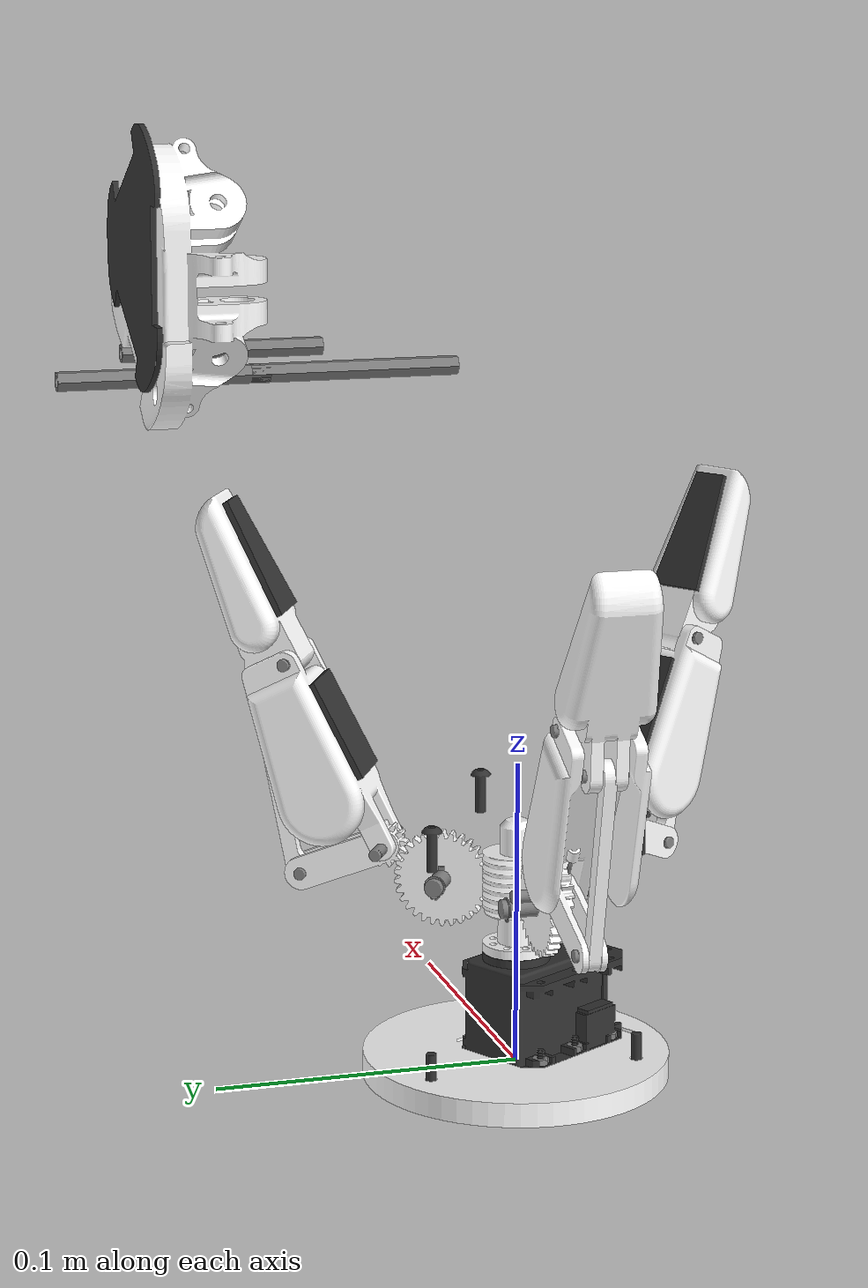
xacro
<?xml version="1.0"?>
<robot name="alaris_gripper" xmlns:xacro="http://www.ros.org/wiki/xacro">

    <!-- Materials and Properties -->
    <xacro:include filename="$(find alaris_gripper_description)/urdf/extras/materials.urdf.xacro"/>
    <xacro:include filename="$(find alaris_gripper_description)/urdf/extras/properties.urdf.xacro"/>

    <!-- Gripper Parts -->
    <xacro:include filename="$(find alaris_gripper_description)/urdf/parts/base.urdf.xacro"/>
    <xacro:include filename="$(find alaris_gripper_description)/urdf/parts/finger.urdf.xacro"/>

    <xacro:alaris_gripper_base prefix="${prefix}"/>

    <xacro:alaris_gripper_finger prefix="${prefix}" finger_id="1" parent="${prefix}_palm_link">
        <origin xyz="-0.0435 -0.00052 -0.006" rpy="0 0 ${PI}"/>
    </xacro:alaris_gripper_finger>

    <xacro:alaris_gripper_finger prefix="${prefix}" finger_id="2" parent="${prefix}_palm_link">
        <origin xyz="0.022 0.03785 -0.006" rpy="0 0 ${PI/3}"/>
    </xacro:alaris_gripper_finger>

    <xacro:alaris_gripper_finger prefix="${prefix}" finger_id="3" parent="${prefix}_palm_link">
        <origin xyz="0.0226 -0.03785 -0.006" rpy="0 0 -${PI/3}"/>
    </xacro:alaris_gripper_finger>

</robot>

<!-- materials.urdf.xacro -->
<robot name="gripper_materials" xmlns:xacro="http://www.ros.org/wiki/xacro">

    <material name="black">
        <color rgba="0.2 0.2 0.2 1"/>
    </material>

    <material name="white">
        <color rgba="1 1 1 1"/>
    </material>

    <material name="gray">
        <color rgba="0.5 0.5 0.5 1"/>
    </material>

</robot>

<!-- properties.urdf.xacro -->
<robot name="gripper_materials" xmlns:xacro="http://www.ros.org/wiki/xacro">

    <xacro:property name="PI" value="3.14159"/>
    <xacro:property name="prefix" value="gripper"/>

</robot>

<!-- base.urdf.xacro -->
<robot name="alaris_gripper_base" xmlns:xacro="http://www.ros.org/wiki/xacro">

<xacro:macro name="alaris_gripper_base" params="prefix">

    <link name="${prefix}_platform_link">
        <visual>
            <origin xyz="0 0 0" rpy="0 0 0"/>
            <geometry>
                <mesh filename="package://alaris_gripper_description/meshes/Gripper_Assembly - platform.STL" scale="0.001 0.001 0.001"/>
            </geometry>
            <material name="white"/>
        </visual>
        <collision>
            <origin xyz="0.0 0.0 0.0" rpy="0 0 0"/>
            <geometry>
                <mesh filename="package://alaris_gripper_description/meshes/Gripper_Assembly - platform.STL" scale="0.001 0.001 0.001"/>
            </geometry>
        </collision>
        <inertial>
            <mass value="0.2" />
            <origin xyz="0 0 0" />
            <inertia ixx="0.003881243" ixy="0.0" ixz="0.0"
                     iyy="0.000498940" iyz="0.0"
                     izz="0.003879257" />
        </inertial>
    </link>

    <link name="${prefix}_mx28t_link">
        <visual>
            <origin xyz="0 0 0" rpy="0 0 0"/>
            <geometry>
                <mesh filename="package://alaris_gripper_description/meshes/Gripper_Assembly - MX28T.STL" scale="0.001 0.001 0.001"/>
            </geometry>
            <material name="black"/>
        </visual>
        <collision>
            <origin xyz="0.0 0.0 0.0" rpy="0 0 0"/>
            <geometry>
                <mesh filename="package://alaris_gripper_description/meshes/Gripper_Assembly - MX28T.STL" scale="0.001 0.001 0.001"/>
            </geometry>
        </collision>
        <inertial>
            <mass value="0.079" />
            <origin xyz="0 0 0" />
            <inertia ixx="0.003881243" ixy="0.0" ixz="0.0"
                     iyy="0.000498940" iyz="0.0"
                     izz="0.003879257" />
        </inertial>
    </link>

    <joint name="${prefix}_platform_mx28t_joint" type="fixed">
        <origin xyz="0.0065 -0.01125 0.0095" rpy="0 0 0"/>
        <parent link="${prefix}_platform_link"/>
        <child link="${prefix}_mx28t_link"/>
    </joint>

    <link name="${prefix}_standoff1_link">
        <visual>
            <origin xyz="0 0 0" rpy="0 0 0"/>
            <geometry>
                <mesh filename="package://alaris_gripper_description/meshes/Gripper_Assembly - Standoff.STL" scale="0.001 0.001 0.001"/>
            </geometry>
            <material name="gray"/>
        </visual>
        <collision>
            <origin xyz="0.0 0.0 0.0" rpy="0 0 0"/>
            <geometry>
                <mesh filename="package://alaris_gripper_description/meshes/Gripper_Assembly - Standoff.STL" scale="0.001 0.001 0.001"/>
            </geometry>
        </collision>
        <inertial>
            <mass value="0.5" />
            <origin xyz="0 0 0" />
            <inertia ixx="0.003881243" ixy="0.0" ixz="0.0"
                     iyy="0.000498940" iyz="0.0"
                     izz="0.003879257" />
        </inertial>
    </link>

    <joint name="${prefix}_platform_standoff1_joint" type="fixed">
        <origin xyz="0.0399 -0.0001 0.04085" rpy="0 0 0"/>
        <parent link="${prefix}_platform_link"/>
        <child link="${prefix}_standoff1_link"/>
    </joint>

    <link name="${prefix}_standoff2_link">
        <visual>
            <origin xyz="0 0 0" rpy="0 0 0"/>
            <geometry>
                <mesh filename="package://alaris_gripper_description/meshes/Gripper_Assembly - Standoff.STL" scale="0.001 0.001 0.001"/>
            </geometry>
            <material name="gray"/>
        </visual>
        <collision>
            <origin xyz="0.0 0.0 0.0" rpy="0 0 0"/>
            <geometry>
                <mesh filename="package://alaris_gripper_description/meshes/Gripper_Assembly - Standoff.STL" scale="0.001 0.001 0.001"/>
            </geometry>
        </collision>
        <inertial>
            <mass value="0.5" />
            <origin xyz="0 0 0" />
            <inertia ixx="0.003881243" ixy="0.0" ixz="0.0"
                     iyy="0.000498940" iyz="0.0"
                     izz="0.003879257" />
        </inertial>
    </link>

    <joint name="${prefix}_platform_standoff2_joint" type="fixed">
        <origin xyz="-0.02 -0.03475 0.04085" rpy="0 0 0"/>
        <parent link="${prefix}_platform_link"/>
        <child link="${prefix}_standoff2_link"/>
    </joint>

    <link name="${prefix}_standoff3_link">
        <visual>
            <origin xyz="0 0 0" rpy="0 0 0"/>
            <geometry>
                <mesh filename="package://alaris_gripper_description/meshes/Gripper_Assembly - Standoff.STL" scale="0.001 0.001 0.001"/>
            </geometry>
            <material name="gray"/>
        </visual>
        <collision>
            <origin xyz="0.0 0.0 0.0" rpy="0 0 0"/>
            <geometry>
                <mesh filename="package://alaris_gripper_description/meshes/Gripper_Assembly - Standoff.STL" scale="0.001 0.001 0.001"/>
            </geometry>
        </collision>
        <inertial>
            <mass value="0.5" />
            <origin xyz="0 0 0" />
            <inertia ixx="0.003881243" ixy="0.0" ixz="0.0"
                     iyy="0.000498940" iyz="0.0"
                     izz="0.003879257" />
        </inertial>
    </link>

    <joint name="${prefix}_platform_standoff3_joint" type="fixed">
        <origin xyz="-0.02 0.0345 0.04085" rpy="0 0 0"/>
        <parent link="${prefix}_platform_link"/>
        <child link="${prefix}_standoff3_link"/>
    </joint>

    <link name="${prefix}_worm_link">
        <visual>
            <origin xyz="0 0 0" rpy="0 0 0"/>
            <geometry>
                <mesh filename="package://alaris_gripper_description/meshes/Gripper_Assembly - worm.STL" scale="0.001 0.001 0.001"/>
            </geometry>
            <material name="white"/>
        </visual>
        <collision>
            <origin xyz="0.0 0.0 0.0" rpy="0 0 0"/>
            <geometry>
                <mesh filename="package://alaris_gripper_description/meshes/Gripper_Assembly - worm.STL" scale="0.001 0.001 0.001"/>
            </geometry>
        </collision>
        <inertial>
            <mass value="0.5" />
            <origin xyz="0 0 0" />
            <inertia ixx="0.003881243" ixy="0.0" ixz="0.0"
                     iyy="0.000498940" iyz="0.0"
                     izz="0.003879257" />
        </inertial>
    </link>

    <joint name="${prefix}_mx28t_worm_joint" type="revolute">
        <origin xyz="-0.00625 0.0112 0.0505" rpy="0 0 0"/>
        <axis xyz="0 0 1" />
        <limit lower="-0.8" upper="0.8" effort="10" velocity="10" />
        <parent link="${prefix}_mx28t_link"/>
        <child link="${prefix}_worm_link"/>
    </joint>

    <link name="${prefix}_palm_link">
        <visual>
            <origin xyz="0 0 0" rpy="0 0 0"/>
            <geometry>
                <mesh filename="package://alaris_gripper_description/meshes/Gripper_Assembly - palm.STL" scale="0.001 0.001 0.001"/>
            </geometry>
            <material name="white"/>
        </visual>
        <collision>
            <origin xyz="0.0 0.0 0.0" rpy="0 0 0"/>
            <geometry>
                <mesh filename="package://alaris_gripper_description/meshes/Gripper_Assembly - palm.STL" scale="0.001 0.001 0.001"/>
            </geometry>
        </collision>
        <inertial>
            <mass value="0.5" />
            <origin xyz="0 0 0" />
            <inertia ixx="0.003881243" ixy="0.0" ixz="0.0"
                     iyy="0.000498940" iyz="0.0"
                     izz="0.003879257" />
        </inertial>
    </link>

    <joint name="${prefix}_platform_palm_joint" type="fixed">
        <origin xyz="0 0 0.07625" rpy="0 0 0"/>
        <parent link="${prefix}_platform_link"/>
        <child link="${prefix}_palm_link"/>
    </joint>

    <link name="${prefix}_standoff1_screw1_link">
        <visual>
            <origin xyz="0 0 0" rpy="0 0 0"/>
            <geometry>
                <mesh filename="package://alaris_gripper_description/meshes/Gripper_Assembly - screw_standoff.STL" scale="0.001 0.001 0.001"/>
            </geometry>
            <material name="black"/>
        </visual>
        <collision>
            <origin xyz="0.0 0.0 0.0" rpy="0 0 0"/>
            <geometry>
                <mesh filename="package://alaris_gripper_description/meshes/Gripper_Assembly - screw_standoff.STL" scale="0.001 0.001 0.001"/>
            </geometry>
        </collision>
        <inertial>
            <mass value="0.5" />
            <origin xyz="0 0 0" />
            <inertia ixx="0.003881243" ixy="0.0" ixz="0.0"
                     iyy="0.000498940" iyz="0.0"
                     izz="0.003879257" />
        </inertial>
    </link>

    <joint name="${prefix}_standoff1_screw1_joint" type="fixed">
        <origin xyz="0 0 -0.0405" rpy="0 ${PI} 0"/>
        <parent link="${prefix}_standoff1_link"/>
        <child link="${prefix}_standoff1_screw1_link"/>
    </joint>

    <link name="${prefix}_standoff2_screw1_link">
        <visual>
            <origin xyz="0 0 0" rpy="0 0 0"/>
            <geometry>
                <mesh filename="package://alaris_gripper_description/meshes/Gripper_Assembly - screw_standoff.STL" scale="0.001 0.001 0.001"/>
            </geometry>
            <material name="black"/>
        </visual>
        <collision>
            <origin xyz="0.0 0.0 0.0" rpy="0 0 0"/>
            <geometry>
                <mesh filename="package://alaris_gripper_description/meshes/Gripper_Assembly - screw_standoff.STL" scale="0.001 0.001 0.001"/>
            </geometry>
        </collision>
        <inertial>
            <mass value="0.5" />
            <origin xyz="0 0 0" />
            <inertia ixx="0.003881243" ixy="0.0" ixz="0.0"
                     iyy="0.000498940" iyz="0.0"
                     izz="0.003879257" />
        </inertial>
    </link>

    <joint name="${prefix}_standoff2_screw1_joint" type="fixed">
        <origin xyz="0 0 -0.0405" rpy="0 ${PI} 0"/>
        <parent link="${prefix}_standoff2_link"/>
        <child link="${prefix}_standoff2_screw1_link"/>
    </joint>

    <link name="${prefix}_standoff3_screw1_link">
        <visual>
            <origin xyz="0 0 0" rpy="0 0 0"/>
            <geometry>
                <mesh filename="package://alaris_gripper_description/meshes/Gripper_Assembly - screw_standoff.STL" scale="0.001 0.001 0.001"/>
            </geometry>
            <material name="black"/>
        </visual>
        <collision>
            <origin xyz="0.0 0.0 0.0" rpy="0 0 0"/>
            <geometry>
                <mesh filename="package://alaris_gripper_description/meshes/Gripper_Assembly - screw_standoff.STL" scale="0.001 0.001 0.001"/>
            </geometry>
        </collision>
        <inertial>
            <mass value="0.5" />
            <origin xyz="0 0 0" />
            <inertia ixx="0.003881243" ixy="0.0" ixz="0.0"
                     iyy="0.000498940" iyz="0.0"
                     izz="0.003879257" />
        </inertial>
    </link>

    <joint name="${prefix}_standoff3_screw1_joint" type="fixed">
        <origin xyz="0 0 -0.0405" rpy="0 ${PI} 0"/>
        <parent link="${prefix}_standoff3_link"/>
        <child link="${prefix}_standoff3_screw1_link"/>
    </joint>

    <link name="${prefix}_standoff1_screw2_link">
        <visual>
            <origin xyz="0 0 0" rpy="0 0 0"/>
            <geometry>
                <mesh filename="package://alaris_gripper_description/meshes/Gripper_Assembly - screw_standoff.STL" scale="0.001 0.001 0.001"/>
            </geometry>
            <material name="black"/>
        </visual>
        <collision>
            <origin xyz="0.0 0.0 0.0" rpy="0 0 0"/>
            <geometry>
                <mesh filename="package://alaris_gripper_description/meshes/Gripper_Assembly - screw_standoff.STL" scale="0.001 0.001 0.001"/>
            </geometry>
        </collision>
        <inertial>
            <mass value="0.5" />
            <origin xyz="0 0 0" />
            <inertia ixx="0.003881243" ixy="0.0" ixz="0.0"
                     iyy="0.000498940" iyz="0.0"
                     izz="0.003879257" />
        </inertial>
    </link>

    <joint name="${prefix}_standoff1_screw2_joint" type="fixed">
        <origin xyz="0 0 0.0445" rpy="0 0 0"/>
        <parent link="${prefix}_standoff1_link"/>
        <child link="${prefix}_standoff1_screw2_link"/>
    </joint>

    <link name="${prefix}_standoff2_screw2_link">
        <visual>
            <origin xyz="0 0 0" rpy="0 0 0"/>
            <geometry>
                <mesh filename="package://alaris_gripper_description/meshes/Gripper_Assembly - screw_standoff.STL" scale="0.001 0.001 0.001"/>
            </geometry>
            <material name="black"/>
        </visual>
        <collision>
            <origin xyz="0.0 0.0 0.0" rpy="0 0 0"/>
            <geometry>
                <mesh filename="package://alaris_gripper_description/meshes/Gripper_Assembly - screw_standoff.STL" scale="0.001 0.001 0.001"/>
            </geometry>
        </collision>
        <inertial>
            <mass value="0.5" />
            <origin xyz="0 0 0" />
            <inertia ixx="0.003881243" ixy="0.0" ixz="0.0"
                     iyy="0.000498940" iyz="0.0"
                     izz="0.003879257" />
        </inertial>
    </link>

    <joint name="${prefix}_standoff2_screw2_joint" type="fixed">
        <origin xyz="0 0 0.0445" rpy="0 0 0"/>
        <parent link="${prefix}_standoff2_link"/>
        <child link="${prefix}_standoff2_screw2_link"/>
    </joint>

    <link name="${prefix}_standoff3_screw2_link">
        <visual>
            <origin xyz="0 0 0" rpy="0 0 0"/>
            <geometry>
                <mesh filename="package://alaris_gripper_description/meshes/Gripper_Assembly - screw_standoff.STL" scale="0.001 0.001 0.001"/>
            </geometry>
            <material name="black"/>
        </visual>
        <collision>
            <origin xyz="0.0 0.0 0.0" rpy="0 0 0"/>
            <geometry>
                <mesh filename="package://alaris_gripper_description/meshes/Gripper_Assembly - screw_standoff.STL" scale="0.001 0.001 0.001"/>
            </geometry>
        </collision>
        <inertial>
            <mass value="0.5" />
            <origin xyz="0 0 0" />
            <inertia ixx="0.003881243" ixy="0.0" ixz="0.0"
                     iyy="0.000498940" iyz="0.0"
                     izz="0.003879257" />
        </inertial>
    </link>

    <joint name="${prefix}_standoff3_screw2_joint" type="fixed">
        <origin xyz="0 0 0.0445" rpy="0 0 0"/>
        <parent link="${prefix}_standoff3_link"/>
        <child link="${prefix}_standoff3_screw2_link"/>
    </joint>

    <link name="${prefix}_palm_rubber_link">
        <visual>
            <origin xyz="0 0 0" rpy="0 0 0"/>
            <geometry>
                <mesh filename="package://alaris_gripper_description/meshes/Gripper_Assembly - rubber_palm.STL" scale="0.001 0.001 0.001"/>
            </geometry>
            <material name="black"/>
        </visual>
        <collision>
            <origin xyz="0.0 0.0 0.0" rpy="0 0 0"/>
            <geometry>
                <mesh filename="package://alaris_gripper_description/meshes/Gripper_Assembly - rubber_palm.STL" scale="0.001 0.001 0.001"/>
            </geometry>
        </collision>
        <inertial>
            <mass value="0.5" />
            <origin xyz="0 0 0" />
            <inertia ixx="0.003881243" ixy="0.0" ixz="0.0"
                     iyy="0.000498940" iyz="0.0"
                     izz="0.003879257" />
        </inertial>
    </link>

    <joint name="${prefix}_palm_rubber_joint" type="fixed">
        <origin xyz="0 0 0.01" rpy="0 0 0"/>
        <parent link="${prefix}_palm_link"/>
        <child link="${prefix}_palm_rubber_link"/>
    </joint>

    <link name="${prefix}_mx28t_screw1_link">
        <visual>
            <origin xyz="0 0 0" rpy="0 0 0"/>
            <geometry>
                <mesh filename="package://alaris_gripper_description/meshes/Gripper_Assembly - M2.5_Screw_for_platform.STL" scale="0.001 0.001 0.001"/>
            </geometry>
            <material name="black"/>
        </visual>
        <collision>
            <origin xyz="0.0 0.0 0.0" rpy="0 0 0"/>
            <geometry>
                <mesh filename="package://alaris_gripper_description/meshes/Gripper_Assembly - M2.5_Screw_for_platform.STL" scale="0.001 0.001 0.001"/>
            </geometry>
        </collision>
        <inertial>
            <mass value="0.5" />
            <origin xyz="0 0 0" />
            <inertia ixx="0.003881243" ixy="0.0" ixz="0.0"
                     iyy="0.000498940" iyz="0.0"
                     izz="0.003879257" />
        </inertial>
    </link>

    <joint name="${prefix}_mx28t_screw1_joint" type="fixed">
        <origin xyz="-0.01315 -0.007 -0.0056" rpy="0 0 0"/>
        <parent link="${prefix}_mx28t_link"/>
        <child link="${prefix}_mx28t_screw1_link"/>
    </joint>

    <link name="${prefix}_mx28t_screw2_link">
        <visual>
            <origin xyz="0 0 0" rpy="0 0 0"/>
            <geometry>
                <mesh filename="package://alaris_gripper_description/meshes/Gripper_Assembly - M2.5_Screw_for_platform.STL" scale="0.001 0.001 0.001"/>
            </geometry>
            <material name="black"/>
        </visual>
        <collision>
            <origin xyz="0.0 0.0 0.0" rpy="0 0 0"/>
            <geometry>
                <mesh filename="package://alaris_gripper_description/meshes/Gripper_Assembly - M2.5_Screw_for_platform.STL" scale="0.001 0.001 0.001"/>
            </geometry>
        </collision>
        <inertial>
            <mass value="0.5" />
            <origin xyz="0 0 0" />
            <inertia ixx="0.003881243" ixy="0.0" ixz="0.0"
                     iyy="0.000498940" iyz="0.0"
                     izz="0.003879257" />
        </inertial>
    </link>

    <joint name="${prefix}_mx28t_screw2_joint" type="fixed">
        <origin xyz="0.01275 0.00787 -0.0056" rpy="0 0 0"/>
        <parent link="${prefix}_mx28t_link"/>
        <child link="${prefix}_mx28t_screw2_link"/>
    </joint>

    <link name="${prefix}_mx28t_screw3_link">
        <visual>
            <origin xyz="0 0 0" rpy="0 0 0"/>
            <geometry>
                <mesh filename="package://alaris_gripper_description/meshes/Gripper_Assembly - M2.5_Screw_for_platform.STL" scale="0.001 0.001 0.001"/>
            </geometry>
            <material name="black"/>
        </visual>
        <collision>
            <origin xyz="0.0 0.0 0.0" rpy="0 0 0"/>
            <geometry>
                <mesh filename="package://alaris_gripper_description/meshes/Gripper_Assembly - M2.5_Screw_for_platform.STL" scale="0.001 0.001 0.001"/>
            </geometry>
        </collision>
        <inertial>
            <mass value="0.5" />
            <origin xyz="0 0 0" />
            <inertia ixx="0.003881243" ixy="0.0" ixz="0.0"
                     iyy="0.000498940" iyz="0.0"
                     izz="0.003879257" />
        </inertial>
    </link>

    <joint name="${prefix}_mx28t_screw3_joint" type="fixed">
        <origin xyz="0.0188 -0.0156 -0.0056" rpy="0 0 0"/>
        <parent link="${prefix}_mx28t_link"/>
        <child link="${prefix}_mx28t_screw3_link"/>
    </joint>

    <link name="${prefix}_mx28t_screw4_link">
        <visual>
            <origin xyz="0 0 0" rpy="0 0 0"/>
            <geometry>
                <mesh filename="package://alaris_gripper_description/meshes/Gripper_Assembly - M2.5_Screw_for_platform.STL" scale="0.001 0.001 0.001"/>
            </geometry>
            <material name="black"/>
        </visual>
        <collision>
            <origin xyz="0.0 0.0 0.0" rpy="0 0 0"/>
            <geometry>
                <mesh filename="package://alaris_gripper_description/meshes/Gripper_Assembly - M2.5_Screw_for_platform.STL" scale="0.001 0.001 0.001"/>
            </geometry>
        </collision>
        <inertial>
            <mass value="0.5" />
            <origin xyz="0 0 0" />
            <inertia ixx="0.003881243" ixy="0.0" ixz="0.0"
                     iyy="0.000498940" iyz="0.0"
                     izz="0.003879257" />
        </inertial>
    </link>

    <joint name="${prefix}_mx28t_screw4_joint" type="fixed">
        <origin xyz="0.0041 -0.024 -0.0056" rpy="0 0 0"/>
        <parent link="${prefix}_mx28t_link"/>
        <child link="${prefix}_mx28t_screw4_link"/>
    </joint>

    <link name="${prefix}_mx28t_screw5_link">
        <visual>
            <origin xyz="0 0 0" rpy="0 0 0"/>
            <geometry>
                <mesh filename="package://alaris_gripper_description/meshes/Gripper_Assembly - M2.5_Screw_for_platform.STL" scale="0.001 0.001 0.001"/>
            </geometry>
            <material name="black"/>
        </visual>
        <collision>
            <origin xyz="0.0 0.0 0.0" rpy="0 0 0"/>
            <geometry>
                <mesh filename="package://alaris_gripper_description/meshes/Gripper_Assembly - M2.5_Screw_for_platform.STL" scale="0.001 0.001 0.001"/>
            </geometry>
        </collision>
        <inertial>
            <mass value="0.5" />
            <origin xyz="0 0 0" />
            <inertia ixx="0.003881243" ixy="0.0" ixz="0.0"
                     iyy="0.000498940" iyz="0.0"
                     izz="0.003879257" />
        </inertial>
    </link>

    <joint name="${prefix}_mx28t_screw5_joint" type="fixed">
        <origin xyz="-0.00475 -0.0218 -0.0056" rpy="0 0 0"/>
        <parent link="${prefix}_mx28t_link"/>
        <child link="${prefix}_mx28t_screw5_link"/>
    </joint>

    <link name="${prefix}_mx28t_screw6_link">
        <visual>
            <origin xyz="0 0 0" rpy="0 0 0"/>
            <geometry>
                <mesh filename="package://alaris_gripper_description/meshes/Gripper_Assembly - M2.5_Screw_for_platform.STL" scale="0.001 0.001 0.001"/>
            </geometry>
            <material name="black"/>
        </visual>
        <collision>
            <origin xyz="0.0 0.0 0.0" rpy="0 0 0"/>
            <geometry>
                <mesh filename="package://alaris_gripper_description/meshes/Gripper_Assembly - M2.5_Screw_for_platform.STL" scale="0.001 0.001 0.001"/>
            </geometry>
        </collision>
        <inertial>
            <mass value="0.5" />
            <origin xyz="0 0 0" />
            <inertia ixx="0.003881243" ixy="0.0" ixz="0.0"
                     iyy="0.000498940" iyz="0.0"
                     izz="0.003879257" />
        </inertial>
    </link>

    <joint name="${prefix}_mx28t_screw6_joint" type="fixed">
        <origin xyz="0.02125 -0.00685 -0.0056" rpy="0 0 0"/>
        <parent link="${prefix}_mx28t_link"/>
        <child link="${prefix}_mx28t_screw6_link"/>
    </joint>

    <link name="${prefix}_mx28t_screw7_link">
        <visual>
            <origin xyz="0 0 0" rpy="0 0 0"/>
            <geometry>
                <mesh filename="package://alaris_gripper_description/meshes/Gripper_Assembly - M2.5_Screw_for_platform.STL" scale="0.001 0.001 0.001"/>
            </geometry>
            <material name="black"/>
        </visual>
        <collision>
            <origin xyz="0.0 0.0 0.0" rpy="0 0 0"/>
            <geometry>
                <mesh filename="package://alaris_gripper_description/meshes/Gripper_Assembly - M2.5_Screw_for_platform.STL" scale="0.001 0.001 0.001"/>
            </geometry>
        </collision>
        <inertial>
            <mass value="0.5" />
            <origin xyz="0 0 0" />
            <inertia ixx="0.003881243" ixy="0.0" ixz="0.0"
                     iyy="0.000498940" iyz="0.0"
                     izz="0.003879257" />
        </inertial>
    </link>

    <joint name="${prefix}_mx28t_screw7_joint" type="fixed">
        <origin xyz="0.0043 0.0226 -0.0056" rpy="0 0 0"/>
        <parent link="${prefix}_mx28t_link"/>
        <child link="${prefix}_mx28t_screw7_link"/>
    </joint>

    <link name="${prefix}_mx28t_screw8_link">
        <visual>
            <origin xyz="0 0 0" rpy="0 0 0"/>
            <geometry>
                <mesh filename="package://alaris_gripper_description/meshes/Gripper_Assembly - M2.5_Screw_for_platform.STL" scale="0.001 0.001 0.001"/>
            </geometry>
            <material name="black"/>
        </visual>
        <collision>
            <origin xyz="0.0 0.0 0.0" rpy="0 0 0"/>
            <geometry>
                <mesh filename="package://alaris_gripper_description/meshes/Gripper_Assembly - M2.5_Screw_for_platform.STL" scale="0.001 0.001 0.001"/>
            </geometry>
        </collision>
        <inertial>
            <mass value="0.5" />
            <origin xyz="0 0 0" />
            <inertia ixx="0.003881243" ixy="0.0" ixz="0.0"
                     iyy="0.000498940" iyz="0.0"
                     izz="0.003879257" />
        </inertial>
    </link>

    <joint name="${prefix}_mx28t_screw8_joint" type="fixed">
        <origin xyz="-0.02175 0.0076 -0.0056" rpy="0 0 0"/>
        <parent link="${prefix}_mx28t_link"/>
        <child link="${prefix}_mx28t_screw8_link"/>
    </joint>

    <link name="${prefix}_mx28t_nut1_link">
        <visual>
            <origin xyz="0 0 0" rpy="0 0 0"/>
            <geometry>
                <mesh filename="package://alaris_gripper_description/meshes/Gripper_Assembly - Nut_M2.5.STL" scale="0.001 0.001 0.001"/>
            </geometry>
            <material name="gray"/>
        </visual>
        <collision>
            <origin xyz="0.0 0.0 0.0" rpy="0 0 0"/>
            <geometry>
                <mesh filename="package://alaris_gripper_description/meshes/Gripper_Assembly - Nut_M2.5.STL" scale="0.001 0.001 0.001"/>
            </geometry>
        </collision>
        <inertial>
            <mass value="0.5" />
            <origin xyz="0 0 0" />
            <inertia ixx="0.003881243" ixy="0.0" ixz="0.0"
                     iyy="0.000498940" iyz="0.0"
                     izz="0.003879257" />
        </inertial>
    </link>

    <joint name="${prefix}_screw1_nut_joint" type="fixed">
        <origin xyz="0 0 0.0008" rpy="0 0 0"/>
        <parent link="${prefix}_mx28t_screw1_link"/>
        <child link="${prefix}_mx28t_nut1_link"/>
    </joint>

    <link name="${prefix}_mx28t_nut2_link">
        <visual>
            <origin xyz="0 0 0" rpy="0 0 0"/>
            <geometry>
                <mesh filename="package://alaris_gripper_description/meshes/Gripper_Assembly - Nut_M2.5.STL" scale="0.001 0.001 0.001"/>
            </geometry>
            <material name="gray"/>
        </visual>
        <collision>
            <origin xyz="0.0 0.0 0.0" rpy="0 0 0"/>
            <geometry>
                <mesh filename="package://alaris_gripper_description/meshes/Gripper_Assembly - Nut_M2.5.STL" scale="0.001 0.001 0.001"/>
            </geometry>
        </collision>
        <inertial>
            <mass value="0.5" />
            <origin xyz="0 0 0" />
            <inertia ixx="0.003881243" ixy="0.0" ixz="0.0"
                     iyy="0.000498940" iyz="0.0"
                     izz="0.003879257" />
        </inertial>
    </link>

    <joint name="${prefix}_screw2_nut_joint" type="fixed">
        <origin xyz="0 0 0.0008" rpy="0 0 0"/>
        <parent link="${prefix}_mx28t_screw2_link"/>
        <child link="${prefix}_mx28t_nut2_link"/>
    </joint>

    <link name="${prefix}_mx28t_nut3_link">
        <visual>
            <origin xyz="0 0 0" rpy="0 0 0"/>
            <geometry>
                <mesh filename="package://alaris_gripper_description/meshes/Gripper_Assembly - Nut_M2.5.STL" scale="0.001 0.001 0.001"/>
            </geometry>
            <material name="gray"/>
        </visual>
        <collision>
            <origin xyz="0.0 0.0 0.0" rpy="0 0 0"/>
            <geometry>
                <mesh filename="package://alaris_gripper_description/meshes/Gripper_Assembly - Nut_M2.5.STL" scale="0.001 0.001 0.001"/>
            </geometry>
        </collision>
        <inertial>
            <mass value="0.5" />
            <origin xyz="0 0 0" />
            <inertia ixx="0.003881243" ixy="0.0" ixz="0.0"
                     iyy="0.000498940" iyz="0.0"
                     izz="0.003879257" />
        </inertial>
    </link>

    <joint name="${prefix}_screw3_nut_joint" type="fixed">
        <origin xyz="0 0 0.0008" rpy="0 0 0"/>
        <parent link="${prefix}_mx28t_screw3_link"/>
        <child link="${prefix}_mx28t_nut3_link"/>
    </joint>

    <link name="${prefix}_mx28t_nut4_link">
        <visual>
            <origin xyz="0 0 0" rpy="0 0 0"/>
            <geometry>
                <mesh filename="package://alaris_gripper_description/meshes/Gripper_Assembly - Nut_M2.5.STL" scale="0.001 0.001 0.001"/>
            </geometry>
            <material name="gray"/>
        </visual>
        <collision>
            <origin xyz="0.0 0.0 0.0" rpy="0 0 0"/>
            <geometry>
                <mesh filename="package://alaris_gripper_description/meshes/Gripper_Assembly - Nut_M2.5.STL" scale="0.001 0.001 0.001"/>
            </geometry>
        </collision>
        <inertial>
            <mass value="0.5" />
            <origin xyz="0 0 0" />
            <inertia ixx="0.003881243" ixy="0.0" ixz="0.0"
                     iyy="0.000498940" iyz="0.0"
                     izz="0.003879257" />
        </inertial>
    </link>

    <joint name="${prefix}_screw4_nut_joint" type="fixed">
        <origin xyz="0 0 0.0008" rpy="0 0 0"/>
        <parent link="${prefix}_mx28t_screw4_link"/>
        <child link="${prefix}_mx28t_nut4_link"/>
    </joint>

    <link name="${prefix}_mx28t_nut5_link">
        <visual>
            <origin xyz="0 0 0" rpy="0 0 0"/>
            <geometry>
                <mesh filename="package://alaris_gripper_description/meshes/Gripper_Assembly - Nut_M2.5.STL" scale="0.001 0.001 0.001"/>
            </geometry>
            <material name="gray"/>
        </visual>
        <collision>
            <origin xyz="0.0 0.0 0.0" rpy="0 0 0"/>
            <geometry>
                <mesh filename="package://alaris_gripper_description/meshes/Gripper_Assembly - Nut_M2.5.STL" scale="0.001 0.001 0.001"/>
            </geometry>
        </collision>
        <inertial>
            <mass value="0.5" />
            <origin xyz="0 0 0" />
            <inertia ixx="0.003881243" ixy="0.0" ixz="0.0"
                     iyy="0.000498940" iyz="0.0"
                     izz="0.003879257" />
        </inertial>
    </link>

    <joint name="${prefix}_screw5_nut_joint" type="fixed">
        <origin xyz="0 0 0.0008" rpy="0 0 0"/>
        <parent link="${prefix}_mx28t_screw5_link"/>
        <child link="${prefix}_mx28t_nut5_link"/>
    </joint>

    <link name="${prefix}_mx28t_nut6_link">
        <visual>
            <origin xyz="0 0 0" rpy="0 0 0"/>
            <geometry>
                <mesh filename="package://alaris_gripper_description/meshes/Gripper_Assembly - Nut_M2.5.STL" scale="0.001 0.001 0.001"/>
            </geometry>
            <material name="gray"/>
        </visual>
        <collision>
            <origin xyz="0.0 0.0 0.0" rpy="0 0 0"/>
            <geometry>
                <mesh filename="package://alaris_gripper_description/meshes/Gripper_Assembly - Nut_M2.5.STL" scale="0.001 0.001 0.001"/>
            </geometry>
        </collision>
        <inertial>
            <mass value="0.5" />
            <origin xyz="0 0 0" />
            <inertia ixx="0.003881243" ixy="0.0" ixz="0.0"
                     iyy="0.000498940" iyz="0.0"
                     izz="0.003879257" />
        </inertial>
    </link>

    <joint name="${prefix}_screw6_nut_joint" type="fixed">
        <origin xyz="0 0 0.0008" rpy="0 0 0"/>
        <parent link="${prefix}_mx28t_screw6_link"/>
        <child link="${prefix}_mx28t_nut6_link"/>
    </joint>

    <link name="${prefix}_mx28t_nut7_link">
        <visual>
            <origin xyz="0 0 0" rpy="0 0 0"/>
            <geometry>
                <mesh filename="package://alaris_gripper_description/meshes/Gripper_Assembly - Nut_M2.5.STL" scale="0.001 0.001 0.001"/>
            </geometry>
            <material name="gray"/>
        </visual>
        <collision>
            <origin xyz="0.0 0.0 0.0" rpy="0 0 0"/>
            <geometry>
                <mesh filename="package://alaris_gripper_description/meshes/Gripper_Assembly - Nut_M2.5.STL" scale="0.001 0.001 0.001"/>
            </geometry>
        </collision>
        <inertial>
            <mass value="0.5" />
            <origin xyz="0 0 0" />
            <inertia ixx="0.003881243" ixy="0.0" ixz="0.0"
                     iyy="0.000498940" iyz="0.0"
                     izz="0.003879257" />
        </inertial>
    </link>

    <joint name="${prefix}_screw7_nut_joint" type="fixed">
        <origin xyz="0 0 0.0008" rpy="0 0 0"/>
        <parent link="${prefix}_mx28t_screw7_link"/>
        <child link="${prefix}_mx28t_nut7_link"/>
    </joint>

    <link name="${prefix}_mx28t_nut8_link">
        <visual>
            <origin xyz="0 0 0" rpy="0 0 0"/>
            <geometry>
                <mesh filename="package://alaris_gripper_description/meshes/Gripper_Assembly - Nut_M2.5.STL" scale="0.001 0.001 0.001"/>
            </geometry>
            <material name="gray"/>
        </visual>
        <collision>
            <origin xyz="0.0 0.0 0.0" rpy="0 0 0"/>
            <geometry>
                <mesh filename="package://alaris_gripper_description/meshes/Gripper_Assembly - Nut_M2.5.STL" scale="0.001 0.001 0.001"/>
            </geometry>
        </collision>
        <inertial>
            <mass value="0.5" />
            <origin xyz="0 0 0" />
            <inertia ixx="0.003881243" ixy="0.0" ixz="0.0"
                     iyy="0.000498940" iyz="0.0"
                     izz="0.003879257" />
        </inertial>
    </link>

    <joint name="${prefix}_screw8_nut_joint" type="fixed">
        <origin xyz="0 0 0.0008" rpy="0 0 0"/>
        <parent link="${prefix}_mx28t_screw8_link"/>
        <child link="${prefix}_mx28t_nut8_link"/>
    </joint>

    <link name="${prefix}_gear1_shaft_link">
        <visual>
            <origin xyz="0 0 0" rpy="0 0 0"/>
            <geometry>
                <mesh filename="package://alaris_gripper_description/meshes/Gripper_Assembly - shaft_1.STL" scale="0.001 0.001 0.001"/>
            </geometry>
            <material name="gray"/>
        </visual>
        <collision>
            <origin xyz="0.0 0.0 0.0" rpy="0 0 0"/>
            <geometry>
                <mesh filename="package://alaris_gripper_description/meshes/Gripper_Assembly - shaft_1.STL" scale="0.001 0.001 0.001"/>
            </geometry>
        </collision>
        <inertial>
            <mass value="0.2" />
            <origin xyz="0 0 0" />
            <inertia ixx="0.003881243" ixy="0.0" ixz="0.0"
                     iyy="0.000498940" iyz="0.0"
                     izz="0.003879257" />
        </inertial>
    </link>

    <joint name="${prefix}_palm_gear1_shaft_joint" type="fixed">
        <origin xyz="0.01365 -0.0215 -0.016" rpy="0 0 0"/>
        <parent link="${prefix}_palm_link"/>
        <child link="${prefix}_gear1_shaft_link"/>
    </joint>

    <link name="${prefix}_gear2_shaft_link">
        <visual>
            <origin xyz="0 0 0" rpy="0 0 0"/>
            <geometry>
                <mesh filename="package://alaris_gripper_description/meshes/Gripper_Assembly - shaft_1.STL" scale="0.001 0.001 0.001"/>
            </geometry>
            <material name="gray"/>
        </visual>
        <collision>
            <origin xyz="0.0 0.0 0.0" rpy="0 0 0"/>
            <geometry>
                <mesh filename="package://alaris_gripper_description/meshes/Gripper_Assembly - shaft_1.STL" scale="0.001 0.001 0.001"/>
            </geometry>
        </collision>
        <inertial>
            <mass value="0.2" />
            <origin xyz="0 0 0" />
            <inertia ixx="0.003881243" ixy="0.0" ixz="0.0"
                     iyy="0.000498940" iyz="0.0"
                     izz="0.003879257" />
        </inertial>
    </link>

    <joint name="${prefix}_palm_gear2_shaft_joint" type="fixed">
        <origin xyz="-0.0245 0.00075 -0.016" rpy="0 0 ${PI/3}"/>
        <parent link="${prefix}_palm_link"/>
        <child link="${prefix}_gear2_shaft_link"/>
    </joint>

    <link name="${prefix}_gear3_shaft_link">
        <visual>
            <origin xyz="0 0 0" rpy="0 0 0"/>
            <geometry>
                <mesh filename="package://alaris_gripper_description/meshes/Gripper_Assembly - shaft_1.STL" scale="0.001 0.001 0.001"/>
            </geometry>
            <material name="gray"/>
        </visual>
        <collision>
            <origin xyz="0.0 0.0 0.0" rpy="0 0 0"/>
            <geometry>
                <mesh filename="package://alaris_gripper_description/meshes/Gripper_Assembly - shaft_1.STL" scale="0.001 0.001 0.001"/>
            </geometry>
        </collision>
        <inertial>
            <mass value="0.2" />
            <origin xyz="0 0 0" />
            <inertia ixx="0.003881243" ixy="0.0" ixz="0.0"
                     iyy="0.000498940" iyz="0.0"
                     izz="0.003879257" />
        </inertial>
    </link>

    <joint name="${prefix}_palm_gear3_shaft_joint" type="fixed">
        <origin xyz="0.0123 0.0215 -0.016" rpy="0 0 ${2*PI/3}"/>
        <parent link="${prefix}_palm_link"/>
        <child link="${prefix}_gear3_shaft_link"/>
    </joint>

    <link name="${prefix}_gear1_link">
        <visual>
            <origin xyz="0 0 0" rpy="0 0 0"/>
            <geometry>
                <mesh filename="package://alaris_gripper_description/meshes/Gripper_Assembly - gear_30x4.STL" scale="0.001 0.001 0.001"/>
            </geometry>
            <material name="white"/>
        </visual>
        <collision>
            <origin xyz="0.0 0.0 0.0" rpy="0 0 0"/>
            <geometry>
                <mesh filename="package://alaris_gripper_description/meshes/Gripper_Assembly - gear_30x4.STL" scale="0.001 0.001 0.001"/>
            </geometry>
        </collision>
        <inertial>
            <mass value="0.079" />
            <origin xyz="0 0 0" />
            <inertia ixx="0.003881243" ixy="0.0" ixz="0.0"
                     iyy="0.000498940" iyz="0.0"
                     izz="0.003879257" />
        </inertial>
    </link>

    <joint name="${prefix}_gear1_shaft_joint" type="revolute">
        <origin xyz="-0.00085 -0.000425 -0.0002" rpy="${PI/9} -${PI/18} ${PI/3}"/>
        <axis xyz="-0.64 0.36 0" />
        <limit lower="-0.8" upper="0.8" effort="10" velocity="10" />
        <parent link="${prefix}_gear1_shaft_link"/>
        <child link="${prefix}_gear1_link"/>
        <mimic joint="${prefix}_mx28t_worm_joint" />
    </joint>

    <link name="${prefix}_gear2_link">
        <visual>
            <origin xyz="0 0 0" rpy="0 0 0"/>
            <geometry>
                <mesh filename="package://alaris_gripper_description/meshes/Gripper_Assembly - gear_30x4.STL" scale="0.001 0.001 0.001"/>
            </geometry>
            <material name="white"/>
        </visual>
        <collision>
            <origin xyz="0.0 0.0 0.0" rpy="0 0 0"/>
            <geometry>
                <mesh filename="package://alaris_gripper_description/meshes/Gripper_Assembly - gear_30x4.STL" scale="0.001 0.001 0.001"/>
            </geometry>
        </collision>
        <inertial>
            <mass value="0.079" />
            <origin xyz="0 0 0" />
            <inertia ixx="0.003881243" ixy="0.0" ixz="0.0"
                     iyy="0.000498940" iyz="0.0"
                     izz="0.003879257" />
        </inertial>
    </link>

    <joint name="${prefix}_gear2_shaft_joint" type="revolute">
        <origin xyz="-0.00085 -0.000425 -0.0002" rpy="${PI/9} -${PI/18} ${PI/3}"/>
        <axis xyz="0.64 -0.36 0" />
        <limit lower="-0.8" upper="0.8" effort="10" velocity="10" />
        <parent link="${prefix}_gear2_shaft_link"/>
        <child link="${prefix}_gear2_link"/>
        <mimic joint="${prefix}_mx28t_worm_joint" />
    </joint>

    <link name="${prefix}_gear3_link">
        <visual>
            <origin xyz="0 0 0" rpy="0 0 0"/>
            <geometry>
                <mesh filename="package://alaris_gripper_description/meshes/Gripper_Assembly - gear_30x4.STL" scale="0.001 0.001 0.001"/>
            </geometry>
            <material name="white"/>
        </visual>
        <collision>
            <origin xyz="0.0 0.0 0.0" rpy="0 0 0"/>
            <geometry>
                <mesh filename="package://alaris_gripper_description/meshes/Gripper_Assembly - gear_30x4.STL" scale="0.001 0.001 0.001"/>
            </geometry>
        </collision>
        <inertial>
            <mass value="0.079" />
            <origin xyz="0 0 0" />
            <inertia ixx="0.003881243" ixy="0.0" ixz="0.0"
                     iyy="0.000498940" iyz="0.0"
                     izz="0.003879257" />
        </inertial>
    </link>

    <joint name="${prefix}_gear3_shaft_joint" type="revolute">
        <origin xyz="-0.00085 -0.000425 -0.0002" rpy="${PI/9} -${PI/18} ${PI/3}"/>
        <axis xyz="-0.64 0.36 0" />
        <limit lower="-0.8" upper="0.8" effort="10" velocity="10" />
        <parent link="${prefix}_gear3_shaft_link"/>
        <child link="${prefix}_gear3_link"/>
        <mimic joint="${prefix}_mx28t_worm_joint" />
    </joint>

    <link name="${prefix}_gear1_shaft_retaining_ring1_link">
        <visual>
            <origin xyz="0 0 0" rpy="0 0 0"/>
            <geometry>
                <mesh filename="package://alaris_gripper_description/meshes/Gripper_Assembly - Retaining ring_2.STL" scale="0.001 0.001 0.001"/>
            </geometry>
            <material name="gray"/>
        </visual>
        <collision>
            <origin xyz="0.0 0.0 0.0" rpy="0 0 0"/>
            <geometry>
                <mesh filename="package://alaris_gripper_description/meshes/Gripper_Assembly - Retaining ring_2" scale="0.001 0.001 0.001"/>
            </geometry>
        </collision>
        <inertial>
            <mass value="0.079" />
            <origin xyz="0 0 0" />
            <inertia ixx="0.003881243" ixy="0.0" ixz="0.0"
                     iyy="0.000498940" iyz="0.0"
                     izz="0.003879257" />
        </inertial>
    </link>

    <joint name="${prefix}_gear1_shaft_retaining_ring1_joint" type="fixed">
        <origin xyz="-0.0105 -0.006 -0.00125" rpy="0 0 ${PI/3}"/>
        <parent link="${prefix}_gear1_shaft_link"/>
        <child link="${prefix}_gear1_shaft_retaining_ring1_link"/>
    </joint>

    <link name="${prefix}_gear1_shaft_retaining_ring2_link">
        <visual>
            <origin xyz="0 0 0" rpy="0 0 0"/>
            <geometry>
                <mesh filename="package://alaris_gripper_description/meshes/Gripper_Assembly - Retaining ring_2.STL" scale="0.001 0.001 0.001"/>
            </geometry>
            <material name="gray"/>
        </visual>
        <collision>
            <origin xyz="0.0 0.0 0.0" rpy="0 0 0"/>
            <geometry>
                <mesh filename="package://alaris_gripper_description/meshes/Gripper_Assembly - Retaining ring_2" scale="0.001 0.001 0.001"/>
            </geometry>
        </collision>
        <inertial>
            <mass value="0.079" />
            <origin xyz="0 0 0" />
            <inertia ixx="0.003881243" ixy="0.0" ixz="0.0"
                     iyy="0.000498940" iyz="0.0"
                     izz="0.003879257" />
        </inertial>
    </link>

    <joint name="${prefix}_gear1_shaft_retaining_ring2_joint" type="fixed">
        <origin xyz="0.009 0.00525 -0.00125" rpy="0 0 ${PI/3}"/>
        <parent link="${prefix}_gear1_shaft_link"/>
        <child link="${prefix}_gear1_shaft_retaining_ring2_link"/>
    </joint>

    <link name="${prefix}_gear2_shaft_retaining_ring1_link">
        <visual>
            <origin xyz="0 0 0" rpy="0 0 0"/>
            <geometry>
                <mesh filename="package://alaris_gripper_description/meshes/Gripper_Assembly - Retaining ring_2.STL" scale="0.001 0.001 0.001"/>
            </geometry>
            <material name="gray"/>
        </visual>
        <collision>
            <origin xyz="0.0 0.0 0.0" rpy="0 0 0"/>
            <geometry>
                <mesh filename="package://alaris_gripper_description/meshes/Gripper_Assembly - Retaining ring_2" scale="0.001 0.001 0.001"/>
            </geometry>
        </collision>
        <inertial>
            <mass value="0.079" />
            <origin xyz="0 0 0" />
            <inertia ixx="0.003881243" ixy="0.0" ixz="0.0"
                     iyy="0.000498940" iyz="0.0"
                     izz="0.003879257" />
        </inertial>
    </link>

    <joint name="${prefix}_gear2_shaft_retaining_ring1_joint" type="fixed">
        <origin xyz="-0.0105 -0.006 -0.00125" rpy="0 0 ${PI/3}"/>
        <parent link="${prefix}_gear2_shaft_link"/>
        <child link="${prefix}_gear2_shaft_retaining_ring1_link"/>
    </joint>

    <link name="${prefix}_gear2_shaft_retaining_ring2_link">
        <visual>
            <origin xyz="0 0 0" rpy="0 0 0"/>
            <geometry>
                <mesh filename="package://alaris_gripper_description/meshes/Gripper_Assembly - Retaining ring_2.STL" scale="0.001 0.001 0.001"/>
            </geometry>
            <material name="gray"/>
        </visual>
        <collision>
            <origin xyz="0.0 0.0 0.0" rpy="0 0 0"/>
            <geometry>
                <mesh filename="package://alaris_gripper_description/meshes/Gripper_Assembly - Retaining ring_2" scale="0.001 0.001 0.001"/>
            </geometry>
        </collision>
        <inertial>
            <mass value="0.079" />
            <origin xyz="0 0 0" />
            <inertia ixx="0.003881243" ixy="0.0" ixz="0.0"
                     iyy="0.000498940" iyz="0.0"
                     izz="0.003879257" />
        </inertial>
    </link>

    <joint name="${prefix}_gear2_shaft_retaining_ring2_joint" type="fixed">
        <origin xyz="0.009 0.00525 -0.00125" rpy="0 0 ${PI/3}"/>
        <parent link="${prefix}_gear2_shaft_link"/>
        <child link="${prefix}_gear2_shaft_retaining_ring2_link"/>
    </joint>

    <link name="${prefix}_gear3_shaft_retaining_ring1_link">
        <visual>
            <origin xyz="0 0 0" rpy="0 0 0"/>
            <geometry>
                <mesh filename="package://alaris_gripper_description/meshes/Gripper_Assembly - Retaining ring_2.STL" scale="0.001 0.001 0.001"/>
            </geometry>
            <material name="gray"/>
        </visual>
        <collision>
            <origin xyz="0.0 0.0 0.0" rpy="0 0 0"/>
            <geometry>
                <mesh filename="package://alaris_gripper_description/meshes/Gripper_Assembly - Retaining ring_2" scale="0.001 0.001 0.001"/>
            </geometry>
        </collision>
        <inertial>
            <mass value="0.079" />
            <origin xyz="0 0 0" />
            <inertia ixx="0.003881243" ixy="0.0" ixz="0.0"
                     iyy="0.000498940" iyz="0.0"
                     izz="0.003879257" />
        </inertial>
    </link>

    <joint name="${prefix}_gear3_shaft_retaining_ring1_joint" type="fixed">
        <origin xyz="-0.0105 -0.006 -0.00125" rpy="0 0 ${PI/3}"/>
        <parent link="${prefix}_gear3_shaft_link"/>
        <child link="${prefix}_gear3_shaft_retaining_ring1_link"/>
    </joint>

    <link name="${prefix}_gear3_shaft_retaining_ring2_link">
        <visual>
            <origin xyz="0 0 0" rpy="0 0 0"/>
            <geometry>
                <mesh filename="package://alaris_gripper_description/meshes/Gripper_Assembly - Retaining ring_2.STL" scale="0.001 0.001 0.001"/>
            </geometry>
            <material name="gray"/>
        </visual>
        <collision>
            <origin xyz="0.0 0.0 0.0" rpy="0 0 0"/>
            <geometry>
                <mesh filename="package://alaris_gripper_description/meshes/Gripper_Assembly - Retaining ring_2" scale="0.001 0.001 0.001"/>
            </geometry>
        </collision>
        <inertial>
            <mass value="0.079" />
            <origin xyz="0 0 0" />
            <inertia ixx="0.003881243" ixy="0.0" ixz="0.0"
                     iyy="0.000498940" iyz="0.0"
                     izz="0.003879257" />
        </inertial>
    </link>

    <joint name="${prefix}_gear3_shaft_retaining_ring2_joint" type="fixed">
        <origin xyz="0.009 0.00525 -0.00125" rpy="0 0 ${PI/3}"/>
        <parent link="${prefix}_gear3_shaft_link"/>
        <child link="${prefix}_gear3_shaft_retaining_ring2_link"/>
    </joint>

</xacro:macro>

</robot>

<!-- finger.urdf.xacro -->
<robot name="alaris_gripper_finger" xmlns:xacro="http://www.ros.org/wiki/xacro">

<xacro:macro name="alaris_gripper_finger" params="prefix finger_id parent *origin">

    <link name="${prefix}_finger_${finger_id}_bottom_shaft1_link">
        <visual>
            <origin xyz="0 0 0" rpy="0 0 0"/>
            <geometry>
                <mesh filename="package://alaris_gripper_description/meshes/Gripper_Assembly - shaft_3.STL" scale="0.001 0.001 0.001"/>
            </geometry>
            <material name="gray"/>
        </visual>
        <collision>
            <origin xyz="0.0 0.0 0.0" rpy="0 0 0"/>
            <geometry>
                <mesh filename="package://alaris_gripper_description/meshes/Gripper_Assembly - shaft_3.STL" scale="0.001 0.001 0.001"/>
            </geometry>
        </collision>
        <inertial>
            <mass value="0.079" />
            <origin xyz="0 0 0" />
            <inertia ixx="0.003881243" ixy="0.0" ixz="0.0"
                     iyy="0.000498940" iyz="0.0"
                     izz="0.003879257" />
        </inertial>
    </link>

    <joint name="${prefix}_finger_${finger_id}_link1_bottom_shaft1_joint" type="revolute">
        <xacro:insert_block name="origin"/>
        <axis xyz="0 1 0" />
        <limit lower="-0.8" upper="0" effort="10" velocity="10" />
        <parent link="${parent}"/>
        <child link="${prefix}_finger_${finger_id}_bottom_shaft1_link"/>
        <mimic joint="${prefix}_mx28t_worm_joint" multiplier="1"/>
    </joint>

    <link name="${prefix}_finger_${finger_id}_link1_revolution_point1"/>

    <joint name="${prefix}_finger_${finger_id}_link1_revolution_point1_joint" type="continuous">
        <origin xyz="0 0 0" rpy="0 0 ${PI/3}"/>
        <axis xyz="0.64 0.36 0" />
        <parent link="${prefix}_finger_${finger_id}_bottom_shaft1_link"/>
        <child link="${prefix}_finger_${finger_id}_link1_revolution_point1"/>
        <mimic joint="${prefix}_finger_${finger_id}_phalanx2_revolution_point_joint" multiplier="0.49"/>
    </joint>

    <link name="${prefix}_finger_${finger_id}_link1_link">
        <visual>
            <origin xyz="0 0 0" rpy="0 0 0"/>
            <geometry>
                <mesh filename="package://alaris_gripper_description/meshes/Gripper_Assembly - link_1.STL" scale="0.001 0.001 0.001"/>
            </geometry>
            <material name="white"/>
        </visual>
        <collision>
            <origin xyz="0.0 0.0 0.0" rpy="0 0 0"/>
            <geometry>
                <mesh filename="package://alaris_gripper_description/meshes/Gripper_Assembly - link_1.STL" scale="0.001 0.001 0.001"/>
            </geometry>
        </collision>
        <inertial>
            <mass value="0.079" />
            <origin xyz="0 0 0" />
            <inertia ixx="0.003881243" ixy="0.0" ixz="0.0"
                     iyy="0.000498940" iyz="0.0"
                     izz="0.003879257" />
        </inertial>
    </link>

    <joint name="${prefix}_finger_${finger_id}_gear_link_joint" type="fixed">
        <origin xyz="0.0012 -0.0025 -0.001" rpy="0 0 0"/>
        <parent link="${prefix}_finger_${finger_id}_link1_revolution_point1"/>
        <child link="${prefix}_finger_${finger_id}_link1_link"/>
    </joint>

    <link name="${prefix}_finger_${finger_id}_link1_revolution_point2"/>

    <joint name="${prefix}_finger_${finger_id}_link1_revolution_point2_joint" type="continuous">
        <origin xyz="0.01252 -0.0218 -0.0101" rpy="0 0 -${PI/3}"/>
        <axis xyz="0 1 0" />
        <parent link="${prefix}_finger_${finger_id}_link1_link"/>
        <child link="${prefix}_finger_${finger_id}_link1_revolution_point2"/>
        <mimic joint="${prefix}_finger_${finger_id}_phalanx2_revolution_point_joint" multiplier="-0.55"/>
    </joint>

    <link name="${prefix}_finger_${finger_id}_link2_link">
        <visual>
            <origin xyz="0 0 0" rpy="0 0 0"/>
            <geometry>
                <mesh filename="package://alaris_gripper_description/meshes/Gripper_Assembly - link_2.STL" scale="0.001 0.001 0.001"/>
            </geometry>
            <material name="white"/>
        </visual>
        <collision>
            <origin xyz="0.0 0.0 0.0" rpy="0 0 0"/>
            <geometry>
                <mesh filename="package://alaris_gripper_description/meshes/Gripper_Assembly - link_2.STL" scale="0.001 0.001 0.001"/>
            </geometry>
        </collision>
        <inertial>
            <mass value="0.079" />
            <origin xyz="0 0 0" />
            <inertia ixx="0.003881243" ixy="0.0" ixz="0.0"
                     iyy="0.000498940" iyz="0.0"
                     izz="0.003879257" />
        </inertial>
    </link>

    <joint name="${prefix}_finger_${finger_id}_link1_link2_joint" type="fixed">
        <origin xyz="0.0065 0 0.034" rpy="0 0 ${PI/3}"/>
        <parent link="${prefix}_finger_${finger_id}_link1_revolution_point2"/>
        <child link="${prefix}_finger_${finger_id}_link2_link"/>
    </joint>

    <link name="${prefix}_finger_${finger_id}_phalanx1_link">
        <visual>
            <origin xyz="0 0 0" rpy="0 0 0"/>
            <geometry>
                <mesh filename="package://alaris_gripper_description/meshes/Gripper_Assembly - phalanx_1.STL" scale="0.001 0.001 0.001"/>
            </geometry>
            <material name="white"/>
        </visual>
        <collision>
            <origin xyz="0.0 0.0 0.0" rpy="0 0 0"/>
            <geometry>
                <mesh filename="package://alaris_gripper_description/meshes/Gripper_Assembly - phalanx_1.STL" scale="0.001 0.001 0.001"/>
            </geometry>
        </collision>
        <inertial>
            <mass value="0.079" />
            <origin xyz="0 0 0" />
            <inertia ixx="0.003881243" ixy="0.0" ixz="0.0"
                     iyy="0.000498940" iyz="0.0"
                     izz="0.003879257" />
        </inertial>
    </link>

    <joint name="${prefix}_finger_${finger_id}_link1_phalanx1_joint" type="fixed">
        <origin xyz="0.01825 0.00075 0.01925" rpy="0 0 ${PI/3}"/>
        <parent link="${prefix}_finger_${finger_id}_bottom_shaft1_link"/>
        <child link="${prefix}_finger_${finger_id}_phalanx1_link"/>
    </joint>

    <link name="${prefix}_finger_${finger_id}_phalanx2_revolution_point"/>

    <joint name="${prefix}_finger_${finger_id}_phalanx2_revolution_point_joint" type="revolute">
        <origin xyz="0.004 -0.012 0.041" rpy="0 0 -${PI/3}"/>
        <axis xyz="0 1 0" />
        <limit lower="-0.8" upper="0" effort="10" velocity="10" />
        <parent link="${prefix}_finger_${finger_id}_phalanx1_link"/>
        <child link="${prefix}_finger_${finger_id}_phalanx2_revolution_point"/>
    </joint>

    <link name="${prefix}_finger_${finger_id}_phalanx2_link">
        <visual>
            <origin xyz="0 0 0" rpy="0 0 0"/>
            <geometry>
                <mesh filename="package://alaris_gripper_description/meshes/Gripper_Assembly - phalanx_2.STL" scale="0.001 0.001 0.001"/>
            </geometry>
            <material name="white"/>
        </visual>
        <collision>
            <origin xyz="0.0 0.0 0.0" rpy="0 0 0"/>
            <geometry>
                <mesh filename="package://alaris_gripper_description/meshes/Gripper_Assembly - phalanx_2.STL" scale="0.001 0.001 0.001"/>
            </geometry>
        </collision>
        <inertial>
            <mass value="0.079" />
            <origin xyz="0 0 0" />
            <inertia ixx="0.003881243" ixy="0.0" ixz="0.0"
                     iyy="0.000498940" iyz="0.0"
                     izz="0.003879257" />
        </inertial>
    </link>

    <joint name="${prefix}_finger_${finger_id}_phalanx1_phalanx2_joint" type="fixed">
        <origin xyz="0.013 0.001 0.016" rpy="0 0 ${PI/3}"/>
        <parent link="${prefix}_finger_${finger_id}_phalanx2_revolution_point"/>
        <child link="${prefix}_finger_${finger_id}_phalanx2_link"/>
    </joint>

    <link name="${prefix}_finger_${finger_id}_rubber_phalanx1_link">
        <visual>
            <origin xyz="0 0 0" rpy="0 0 0"/>
            <geometry>
                <mesh filename="package://alaris_gripper_description/meshes/Gripper_Assembly - rubber_phalanx_1.STL" scale="0.001 0.001 0.001"/>
            </geometry>
            <material name="black"/>
        </visual>
        <collision>
            <origin xyz="0.0 0.0 0.0" rpy="0 0 0"/>
            <geometry>
                <mesh filename="package://alaris_gripper_description/meshes/Gripper_Assembly - rubber_phalanx_1.STL" scale="0.001 0.001 0.001"/>
            </geometry>
        </collision>
        <inertial>
            <mass value="0.079" />
            <origin xyz="0 0 0" />
            <inertia ixx="0.003881243" ixy="0.0" ixz="0.0"
                     iyy="0.000498940" iyz="0.0"
                     izz="0.003879257" />
        </inertial>
    </link>

    <joint name="${prefix}_finger_${finger_id}_phalanx1_rubber_joint" type="fixed">
        <origin xyz="-0.003 0.003 0.02" rpy="${PI/3} -${PI/7} ${PI/4}"/>
        <parent link="${prefix}_finger_${finger_id}_phalanx1_link"/>
        <child link="${prefix}_finger_${finger_id}_rubber_phalanx1_link"/>
    </joint>

    <link name="${prefix}_finger_${finger_id}_rubber_phalanx2_link">
        <visual>
            <origin xyz="0 0 0" rpy="0 0 0"/>
            <geometry>
                <mesh filename="package://alaris_gripper_description/meshes/Gripper_Assembly - rubber_phalanx_2.STL" scale="0.001 0.001 0.001"/>
            </geometry>
            <material name="black"/>
        </visual>
        <collision>
            <origin xyz="0.0 0.0 0.0" rpy="0 0 0"/>
            <geometry>
                <mesh filename="package://alaris_gripper_description/meshes/Gripper_Assembly - rubber_phalanx_2.STL" scale="0.001 0.001 0.001"/>
            </geometry>
        </collision>
        <inertial>
            <mass value="0.079" />
            <origin xyz="0 0 0" />
            <inertia ixx="0.003881243" ixy="0.0" ixz="0.0"
                     iyy="0.000498940" iyz="0.0"
                     izz="0.003879257" />
        </inertial>
    </link>

    <joint name="${prefix}_finger_${finger_id}_phalanx2_rubber_joint" type="fixed">
        <origin xyz="-0.0008 0.0008 0.0175" rpy="${PI/3} -${PI/7} ${PI/4}"/>
        <parent link="${prefix}_finger_${finger_id}_phalanx2_link"/>
        <child link="${prefix}_finger_${finger_id}_rubber_phalanx2_link"/>
    </joint>

    <link name="${prefix}_finger_${finger_id}_top_shaft1_link">
        <visual>
            <origin xyz="0 0 0" rpy="0 0 0"/>
            <geometry>
                <mesh filename="package://alaris_gripper_description/meshes/Gripper_Assembly - shaft_2.STL" scale="0.001 0.001 0.001"/>
            </geometry>
            <material name="gray"/>
        </visual>
        <collision>
            <origin xyz="0.0 0.0 0.0" rpy="0 0 0"/>
            <geometry>
                <mesh filename="package://alaris_gripper_description/meshes/Gripper_Assembly - shaft_2.STL" scale="0.001 0.001 0.001"/>
            </geometry>
        </collision>
        <inertial>
            <mass value="0.079" />
            <origin xyz="0 0 0" />
            <inertia ixx="0.003881243" ixy="0.0" ixz="0.0"
                     iyy="0.000498940" iyz="0.0"
                     izz="0.003879257" />
        </inertial>
    </link>

    <joint name="${prefix}_finger_${finger_id}_phalanx1_top_shaft1_joint" type="fixed">
        <origin xyz="0.00425 -0.0121 0.0414" rpy="0 0 -${PI/3}"/>
        <parent link="${prefix}_finger_${finger_id}_phalanx1_link"/>
        <child link="${prefix}_finger_${finger_id}_top_shaft1_link"/>
    </joint>

    <link name="${prefix}_finger_${finger_id}_bottom_shaft2_link">
        <visual>
            <origin xyz="0 0 0" rpy="0 0 0"/>
            <geometry>
                <mesh filename="package://alaris_gripper_description/meshes/Gripper_Assembly - shaft_4.STL" scale="0.001 0.001 0.001"/>
            </geometry>
            <material name="gray"/>
        </visual>
        <collision>
            <origin xyz="0.0 0.0 0.0" rpy="0 0 0"/>
            <geometry>
                <mesh filename="package://alaris_gripper_description/meshes/Gripper_Assembly - shaft_4.STL" scale="0.001 0.001 0.001"/>
            </geometry>
        </collision>
        <inertial>
            <mass value="0.079" />
            <origin xyz="0 0 0" />
            <inertia ixx="0.003881243" ixy="0.0" ixz="0.0"
                     iyy="0.000498940" iyz="0.0"
                     izz="0.003879257" />
        </inertial>
    </link>

    <joint name="${prefix}_finger_${finger_id}_link1_bottom_shaft2_joint" type="fixed">
        <origin xyz="0.01252 -0.0218 -0.0101" rpy="0 0 -${PI/3}"/>
        <parent link="${prefix}_finger_${finger_id}_link1_link"/>
        <child link="${prefix}_finger_${finger_id}_bottom_shaft2_link"/>
    </joint>

    <link name="${prefix}_finger_${finger_id}_top_shaft2_link">
        <visual>
            <origin xyz="0 0 0" rpy="0 0 0"/>
            <geometry>
                <mesh filename="package://alaris_gripper_description/meshes/Gripper_Assembly - shaft_5.STL" scale="0.001 0.001 0.001"/>
            </geometry>
            <material name="gray"/>
        </visual>
        <collision>
            <origin xyz="0.0 0.0 0.0" rpy="0 0 0"/>
            <geometry>
                <mesh filename="package://alaris_gripper_description/meshes/Gripper_Assembly - shaft_5.STL" scale="0.001 0.001 0.001"/>
            </geometry>
        </collision>
        <inertial>
            <mass value="0.079" />
            <origin xyz="0 0 0" />
            <inertia ixx="0.003881243" ixy="0.0" ixz="0.0"
                     iyy="0.000498940" iyz="0.0"
                     izz="0.003879257" />
        </inertial>
    </link>

    <joint name="${prefix}_finger_${finger_id}_phalanx2_top_shaft2_joint" type="fixed">
        <origin xyz="-0.00125 0.00325 -0.02835" rpy="0 0 -${PI/3}"/>
        <parent link="${prefix}_finger_${finger_id}_phalanx2_link"/>
        <child link="${prefix}_finger_${finger_id}_top_shaft2_link"/>
    </joint>

</xacro:macro>

</robot>
